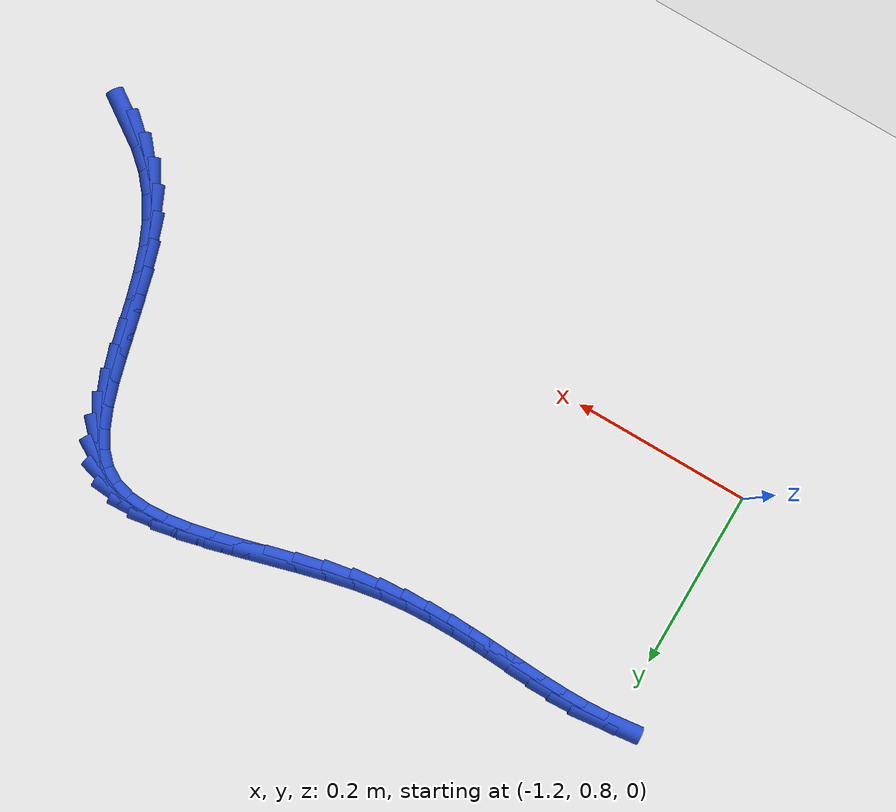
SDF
<sdf version="1.6">
 <world name="default">
  <model name="ground_plane">
   <static>1</static>
   <link name="link">
    <collision name="collision">
     <geometry><plane><normal>0 0 1</normal><size>100 100</size></plane></geometry>
     <surface><friction><ode><mu>100</mu><mu2>50</mu2></ode></friction></surface>
    </collision>
    <visual name="visual">
     <cast_shadows>0</cast_shadows>
     <geometry><plane><normal>0 0 1</normal><size>100 100</size></plane></geometry>
     <material>
      <script><uri>file://media/materials/scripts/gazebo.material</uri><name>Gazebo/WhiteGlow</name></script>
     </material>
    </visual>
   </link>
  </model>
  <model name="line">
   <link name="link_37">
    <pose>-0.4322231522256321 0.7821380322907749 0.01 0 1.57 -0.6088142352244349</pose>
    <collision name="collision">
     <geometry><cylinder><radius>0.01</radius><length>0.08</length></cylinder></geometry>
    </collision>
    <visual name="visual">
     <material>
      <script><name>Gazebo/Blue</name><uri>file://media/materials/scripts/gazebo.material</uri></script>
     </material>
     <geometry><cylinder><radius>0.01</radius><length>0.08</length></cylinder></geometry>
    </visual>
   </link>
   <link name="link_38">
    <pose>-0.45439187857849217 0.7975930779571566 0.01 0 1.57 -0.7418243594841966</pose>
    <collision name="collision">
     <geometry><cylinder><radius>0.01</radius><length>0.08</length></cylinder></geometry>
    </collision>
    <visual name="visual">
     <material>
      <script><name>Gazebo/Blue</name><uri>file://media/materials/scripts/gazebo.material</uri></script>
     </material>
     <geometry><cylinder><radius>0.01</radius><length>0.08</length></cylinder></geometry>
    </visual>
   </link>
   <link name="link_39">
    <pose>-0.47420206210935784 0.8157479325825727 0.01 0 1.57 -0.8889833998280542</pose>
    <collision name="collision">
     <geometry><cylinder><radius>0.01</radius><length>0.08</length></cylinder></geometry>
    </collision>
    <visual name="visual">
     <material>
      <script><name>Gazebo/Blue</name><uri>file://media/materials/scripts/gazebo.material</uri></script>
     </material>
     <geometry><cylinder><radius>0.01</radius><length>0.08</length></cylinder></geometry>
    </visual>
   </link>
   <link name="link_40">
    <pose>-0.4912897389504308 0.8368005747712982 0.01 0 1.57 -1.0404978819189734</pose>
    <collision name="collision">
     <geometry><cylinder><radius>0.01</radius><length>0.08</length></cylinder></geometry>
    </collision>
    <visual name="visual">
     <material>
      <script><name>Gazebo/Blue</name><uri>file://media/materials/scripts/gazebo.material</uri></script>
     </material>
     <geometry><cylinder><radius>0.01</radius><length>0.08</length></cylinder></geometry>
    </visual>
   </link>
   <link name="link_41">
    <pose>-0.5053901916258616 0.8608497308193352 0.01 0 1.57 -1.162971881866138</pose>
    <collision name="collision">
     <geometry><cylinder><radius>0.01</radius><length>0.08</length></cylinder></geometry>
    </collision>
    <visual name="visual">
     <material>
      <script><name>Gazebo/Blue</name><uri>file://media/materials/scripts/gazebo.material</uri></script>
     </material>
     <geometry><cylinder><radius>0.01</radius><length>0.08</length></cylinder></geometry>
    </visual>
   </link>
   <link name="link_42">
    <pose>-0.5168526009541179 0.8873801921323666 0.01 0 1.57 -1.249450072627195</pose>
    <collision name="collision">
     <geometry><cylinder><radius>0.01</radius><length>0.08</length></cylinder></geometry>
    </collision>
    <visual name="visual">
     <material>
      <script><name>Gazebo/Blue</name><uri>file://media/materials/scripts/gazebo.material</uri></script>
     </material>
     <geometry><cylinder><radius>0.01</radius><length>0.08</length></cylinder></geometry>
    </visual>
   </link>
   <link name="link_43">
    <pose>-0.526260602964229 0.9156422809290542 0.01 0 1.57 -1.3057484327358289</pose>
    <collision name="collision">
     <geometry><cylinder><radius>0.01</radius><length>0.08</length></cylinder></geometry>
    </collision>
    <visual name="visual">
     <material>
      <script><name>Gazebo/Blue</name><uri>file://media/materials/scripts/gazebo.material</uri></script>
     </material>
     <geometry><cylinder><radius>0.01</radius><length>0.08</length></cylinder></geometry>
    </visual>
   </link>
   <link name="link_44">
    <pose>-0.5341983016053953 0.9448858514799972 0.01 0 1.57 -1.3359725627695545</pose>
    <collision name="collision">
     <geometry><cylinder><radius>0.01</radius><length>0.08</length></cylinder></geometry>
    </collision>
    <visual name="visual">
     <material>
      <script><name>Gazebo/Blue</name><uri>file://media/materials/scripts/gazebo.material</uri></script>
     </material>
     <geometry><cylinder><radius>0.01</radius><length>0.08</length></cylinder></geometry>
    </visual>
   </link>
   <link name="link_45">
    <pose>-0.5412498008268156 0.9743607580557938 0.01 0 1.57 -1.3417942864793853</pose>
    <collision name="collision">
     <geometry><cylinder><radius>0.01</radius><length>0.08</length></cylinder></geometry>
    </collision>
    <visual name="visual">
     <material>
      <script><name>Gazebo/Blue</name><uri>file://media/materials/scripts/gazebo.material</uri></script>
     </material>
     <geometry><cylinder><radius>0.01</radius><length>0.08</length></cylinder></geometry>
    </visual>
   </link>
   <link name="link_46">
    <pose>-0.54799920457769 1.0033168549270424 0.01 0 1.57 -1.3220945736978469</pose>
    <collision name="collision">
     <geometry><cylinder><radius>0.01</radius><length>0.08</length></cylinder></geometry>
    </collision>
    <visual name="visual">
     <material>
      <script><name>Gazebo/Blue</name><uri>file://media/materials/scripts/gazebo.material</uri></script>
     </material>
     <geometry><cylinder><radius>0.01</radius><length>0.08</length></cylinder></geometry>
    </visual>
   </link>
   <link name="link_47">
    <pose>-0.555030616807218 1.031003996364342 0.01 0 1.57 -1.2723092781854561</pose>
    <collision name="collision">
     <geometry><cylinder><radius>0.01</radius><length>0.08</length></cylinder></geometry>
    </collision>
    <visual name="visual">
     <material>
      <script><name>Gazebo/Blue</name><uri>file://media/materials/scripts/gazebo.material</uri></script>
     </material>
     <geometry><cylinder><radius>0.01</radius><length>0.08</length></cylinder></geometry>
    </visual>
   </link>
   <link name="link_48">
    <pose>-0.5629281414645995 1.0566720366382916 0.01 0 1.57 -1.1832240540384102</pose>
    <collision name="collision">
     <geometry><cylinder><radius>0.01</radius><length>0.08</length></cylinder></geometry>
    </collision>
    <visual name="visual">
     <material>
      <script><name>Gazebo/Blue</name><uri>file://media/materials/scripts/gazebo.material</uri></script>
     </material>
     <geometry><cylinder><radius>0.01</radius><length>0.08</length></cylinder></geometry>
    </visual>
   </link>
   <link name="link_49">
    <pose>-0.5722758824990334 1.0795708300194886 0.01 0 1.57 -1.0397467110572345</pose>
    <collision name="collision">
     <geometry><cylinder><radius>0.01</radius><length>0.08</length></cylinder></geometry>
    </collision>
    <visual name="visual">
     <material>
      <script><name>Gazebo/Blue</name><uri>file://media/materials/scripts/gazebo.material</uri></script>
     </material>
     <geometry><cylinder><radius>0.01</radius><length>0.08</length></cylinder></geometry>
    </visual>
   </link>
   <link name="link_50">
    <pose>-0.5836579438597201 1.098950230778533 0.01 0 1.57 -0.8234890917243034</pose>
    <collision name="collision">
     <geometry><cylinder><radius>0.01</radius><length>0.08</length></cylinder></geometry>
    </collision>
    <visual name="visual">
     <material>
      <script><name>Gazebo/Blue</name><uri>file://media/materials/scripts/gazebo.material</uri></script>
     </material>
     <geometry><cylinder><radius>0.01</radius><length>0.08</length></cylinder></geometry>
    </visual>
   </link>
   <link name="link_51">
    <pose>-0.5976584294958587 1.1140600931860223 0.01 0 1.57 -0.5417472938021559</pose>
    <collision name="collision">
     <geometry><cylinder><radius>0.01</radius><length>0.08</length></cylinder></geometry>
    </collision>
    <visual name="visual">
     <material>
      <script><name>Gazebo/Blue</name><uri>file://media/materials/scripts/gazebo.material</uri></script>
     </material>
     <geometry><cylinder><radius>0.01</radius><length>0.08</length></cylinder></geometry>
    </visual>
   </link>
   <link name="link_52">
    <pose>-0.6147346970407093 1.1243367146275443 0.01 0 1.57 -0.2817296846337053</pose>
    <collision name="collision">
     <geometry><cylinder><radius>0.01</radius><length>0.08</length></cylinder></geometry>
    </collision>
    <visual name="visual">
     <material>
      <script><name>Gazebo/Blue</name><uri>file://media/materials/scripts/gazebo.material</uri></script>
     </material>
     <geometry><cylinder><radius>0.01</radius><length>0.08</length></cylinder></geometry>
    </visual>
   </link>
   <link name="link_53">
    <pose>-0.6347276265189858 1.1301232275694975 0.01 0 1.57 -0.08466259850490172</pose>
    <collision name="collision">
     <geometry><cylinder><radius>0.01</radius><length>0.08</length></cylinder></geometry>
    </collision>
    <visual name="visual">
     <material>
      <script><name>Gazebo/Blue</name><uri>file://media/materials/scripts/gazebo.material</uri></script>
     </material>
     <geometry><cylinder><radius>0.01</radius><length>0.08</length></cylinder></geometry>
    </visual>
   </link>
   <link name="link_54">
    <pose>-0.6572909394967803 1.1320380735139974 0.01 0 1.57 0.053939501060476854</pose>
    <collision name="collision">
     <geometry><cylinder><radius>0.01</radius><length>0.08</length></cylinder></geometry>
    </collision>
    <visual name="visual">
     <material>
      <script><name>Gazebo/Blue</name><uri>file://media/materials/scripts/gazebo.material</uri></script>
     </material>
     <geometry><cylinder><radius>0.01</radius><length>0.08</length></cylinder></geometry>
    </visual>
   </link>
   <link name="link_55">
    <pose>-0.682078314912072 1.1306997566688721 0.01 0 1.57 0.14790715090181028</pose>
    <collision name="collision">
     <geometry><cylinder><radius>0.01</radius><length>0.08</length></cylinder></geometry>
    </collision>
    <visual name="visual">
     <material>
      <script><name>Gazebo/Blue</name><uri>file://media/materials/scripts/gazebo.material</uri></script>
     </material>
     <geometry><cylinder><radius>0.01</radius><length>0.08</length></cylinder></geometry>
    </visual>
   </link>
   <link name="link_56">
    <pose>-0.7087434317028406 1.1267267812419504 0.01 0 1.57 0.2092960002546825</pose>
    <collision name="collision">
     <geometry><cylinder><radius>0.01</radius><length>0.08</length></cylinder></geometry>
    </collision>
    <visual name="visual">
     <material>
      <script><name>Gazebo/Blue</name><uri>file://media/materials/scripts/gazebo.material</uri></script>
     </material>
     <geometry><cylinder><radius>0.01</radius><length>0.08</length></cylinder></geometry>
    </visual>
   </link>
   <link name="link_57">
    <pose>-0.736939968807065 1.1207376514410599 0.01 0 1.57 0.24630344905452578</pose>
    <collision name="collision">
     <geometry><cylinder><radius>0.01</radius><length>0.08</length></cylinder></geometry>
    </collision>
    <visual name="visual">
     <material>
      <script><name>Gazebo/Blue</name><uri>file://media/materials/scripts/gazebo.material</uri></script>
     </material>
     <geometry><cylinder><radius>0.01</radius><length>0.08</length></cylinder></geometry>
    </visual>
   </link>
   <link name="link_58">
    <pose>-0.7663216051627246 1.1133508714740288 0.01 0 1.57 0.26390964342603934</pose>
    <collision name="collision">
     <geometry><cylinder><radius>0.01</radius><length>0.08</length></cylinder></geometry>
    </collision>
    <visual name="visual">
     <material>
      <script><name>Gazebo/Blue</name><uri>file://media/materials/scripts/gazebo.material</uri></script>
     </material>
     <geometry><cylinder><radius>0.01</radius><length>0.08</length></cylinder></geometry>
    </visual>
   </link>
   <link name="link_59">
    <pose>-0.7965420197077984 1.105184945548686 0.01 0 1.57 0.26474615580008765</pose>
    <collision name="collision">
     <geometry><cylinder><radius>0.01</radius><length>0.08</length></cylinder></geometry>
    </collision>
    <visual name="visual">
     <material>
      <script><name>Gazebo/Blue</name><uri>file://media/materials/scripts/gazebo.material</uri></script>
     </material>
     <geometry><cylinder><radius>0.01</radius><length>0.08</length></cylinder></geometry>
    </visual>
   </link>
   <link name="link_60">
    <pose>-0.8272548913802661 1.0968583778728587 0.01 0 1.57 0.24966858246289933</pose>
    <collision name="collision">
     <geometry><cylinder><radius>0.01</radius><length>0.08</length></cylinder></geometry>
    </collision>
    <visual name="visual">
     <material>
      <script><name>Gazebo/Blue</name><uri>file://media/materials/scripts/gazebo.material</uri></script>
     </material>
     <geometry><cylinder><radius>0.01</radius><length>0.08</length></cylinder></geometry>
    </visual>
   </link>
   <link name="link_61">
    <pose>-0.8581138991181072 1.088989672654376 0.01 0 1.57 0.21802442290079138</pose>
    <collision name="collision">
     <geometry><cylinder><radius>0.01</radius><length>0.08</length></cylinder></geometry>
    </collision>
    <visual name="visual">
     <material>
      <script><name>Gazebo/Blue</name><uri>file://media/materials/scripts/gazebo.material</uri></script>
     </material>
     <geometry><cylinder><radius>0.01</radius><length>0.08</length></cylinder></geometry>
    </visual>
   </link>
   <link name="link_62">
    <pose>-0.8887727218593002 1.0821973341010658 0.01 0 1.57 0.1677948711607212</pose>
    <collision name="collision">
     <geometry><cylinder><radius>0.01</radius><length>0.08</length></cylinder></geometry>
    </collision>
    <visual name="visual">
     <material>
      <script><name>Gazebo/Blue</name><uri>file://media/materials/scripts/gazebo.material</uri></script>
     </material>
     <geometry><cylinder><radius>0.01</radius><length>0.08</length></cylinder></geometry>
    </visual>
   </link>
   <link name="link_63">
    <pose>-0.9188865022994168 1.0770964339439755 0.01 0 1.57 0.10590770142750167</pose>
    <collision name="collision">
     <geometry><cylinder><radius>0.01</radius><length>0.08</length></cylinder></geometry>
    </collision>
    <visual name="visual">
     <material>
      <script><name>Gazebo/Blue</name><uri>file://media/materials/scripts/gazebo.material</uri></script>
     </material>
     <geometry><cylinder><radius>0.01</radius><length>0.08</length></cylinder></geometry>
    </visual>
   </link>
   <link name="link_64">
    <pose>-0.9482498712301497 1.0739749476422635 0.01 0 1.57 0.05043483621390203</pose>
    <collision name="collision">
     <geometry><cylinder><radius>0.01</radius><length>0.08</length></cylinder></geometry>
    </collision>
    <visual name="visual">
     <material>
      <script><name>Gazebo/Blue</name><uri>file://media/materials/scripts/gazebo.material</uri></script>
     </material>
     <geometry><cylinder><radius>0.01</radius><length>0.08</length></cylinder></geometry>
    </visual>
   </link>
   <link name="link_65">
    <pose>-0.9769101730900047 1.0725282431564873 0.01 0 1.57 0.0049602346354941425</pose>
    <collision name="collision">
     <geometry><cylinder><radius>0.01</radius><length>0.08</length></cylinder></geometry>
    </collision>
    <visual name="visual">
     <material>
      <script><name>Gazebo/Blue</name><uri>file://media/materials/scripts/gazebo.material</uri></script>
     </material>
     <geometry><cylinder><radius>0.01</radius><length>0.08</length></cylinder></geometry>
    </visual>
   </link>
   <link name="link_66">
    <pose>-1.0049413998765668 1.072389200554172 0.01 0 1.57 -0.029162466634927737</pose>
    <collision name="collision">
     <geometry><cylinder><radius>0.01</radius><length>0.08</length></cylinder></geometry>
    </collision>
    <visual name="visual">
     <material>
      <script><name>Gazebo/Blue</name><uri>file://media/materials/scripts/gazebo.material</uri></script>
     </material>
     <geometry><cylinder><radius>0.01</radius><length>0.08</length></cylinder></geometry>
    </visual>
   </link>
   <link name="link_67">
    <pose>-1.0324175435874205 1.0731906999028422 0.01 0 1.57 -0.05088837338573158</pose>
    <collision name="collision">
     <geometry><cylinder><radius>0.01</radius><length>0.08</length></cylinder></geometry>
    </collision>
    <visual name="visual">
     <material>
      <script><name>Gazebo/Blue</name><uri>file://media/materials/scripts/gazebo.material</uri></script>
     </material>
     <geometry><cylinder><radius>0.01</radius><length>0.08</length></cylinder></geometry>
    </visual>
   </link>
   <link name="link_68">
    <pose>-1.0594125962201517 1.0745656212700239 0.01 0 1.57 -0.05940145835717837</pose>
    <collision name="collision">
     <geometry><cylinder><radius>0.01</radius><length>0.08</length></cylinder></geometry>
    </collision>
    <visual name="visual">
     <material>
      <script><name>Gazebo/Blue</name><uri>file://media/materials/scripts/gazebo.material</uri></script>
     </material>
     <geometry><cylinder><radius>0.01</radius><length>0.08</length></cylinder></geometry>
    </visual>
   </link>
   <link name="link_69">
    <pose>-1.086000549772344 1.0761468447232412 0.01 0 1.57 -0.05404801161643357</pose>
    <collision name="collision">
     <geometry><cylinder><radius>0.01</radius><length>0.08</length></cylinder></geometry>
    </collision>
    <visual name="visual">
     <material>
      <script><name>Gazebo/Blue</name><uri>file://media/materials/scripts/gazebo.material</uri></script>
     </material>
     <geometry><cylinder><radius>0.01</radius><length>0.08</length></cylinder></geometry>
    </visual>
   </link>
   <link name="link_70">
    <pose>-1.112255396241583 1.0775672503300204 0.01 0 1.57 -0.03431784356362337</pose>
    <collision name="collision">
     <geometry><cylinder><radius>0.01</radius><length>0.08</length></cylinder></geometry>
    </collision>
    <visual name="visual">
     <material>
      <script><name>Gazebo/Blue</name><uri>file://media/materials/scripts/gazebo.material</uri></script>
     </material>
     <geometry><cylinder><radius>0.01</radius><length>0.08</length></cylinder></geometry>
    </visual>
   </link>
   <link name="link_71">
    <pose>-1.1382511276254532 1.0784597181578854 0.01 0 1.57 0.0001003418239902149</pose>
    <collision name="collision">
     <geometry><cylinder><radius>0.01</radius><length>0.08</length></cylinder></geometry>
    </collision>
    <visual name="visual">
     <material>
      <script><name>Gazebo/Blue</name><uri>file://media/materials/scripts/gazebo.material</uri></script>
     </material>
     <geometry><cylinder><radius>0.01</radius><length>0.08</length></cylinder></geometry>
    </visual>
   </link>
   <link name="link_72">
    <pose>-1.16406173592154 1.078457128274362 0.01 0 1.57 0.04917407123176072</pose>
    <collision name="collision">
     <geometry><cylinder><radius>0.01</radius><length>0.08</length></cylinder></geometry>
    </collision>
    <visual name="visual">
     <material>
      <script><name>Gazebo/Blue</name><uri>file://media/materials/scripts/gazebo.material</uri></script>
     </material>
     <geometry><cylinder><radius>0.01</radius><length>0.08</length></cylinder></geometry>
    </visual>
   </link>
   <link name="link_73">
    <pose>-1.1897612131274282 1.0771923607469758 0.01 0 1.57 0.11230032179949456</pose>
    <collision name="collision">
     <geometry><cylinder><radius>0.01</radius><length>0.08</length></cylinder></geometry>
    </collision>
    <visual name="visual">
     <material>
      <script><name>Gazebo/Blue</name><uri>file://media/materials/scripts/gazebo.material</uri></script>
     </material>
     <geometry><cylinder><radius>0.01</radius><length>0.08</length></cylinder></geometry>
    </visual>
   </link>
  </model>
 </world>
</sdf>
